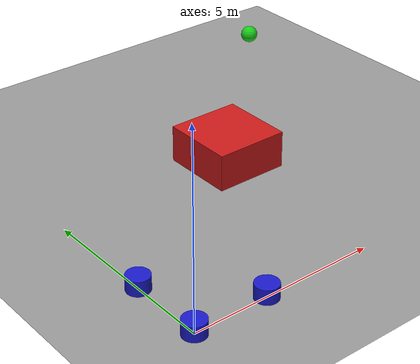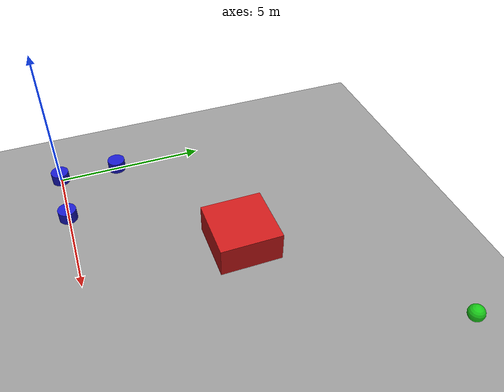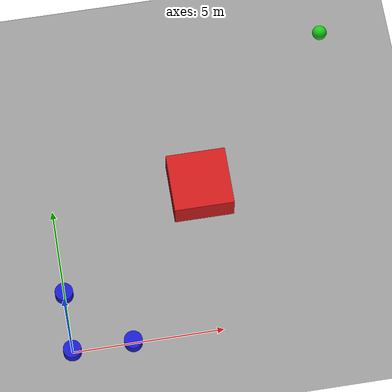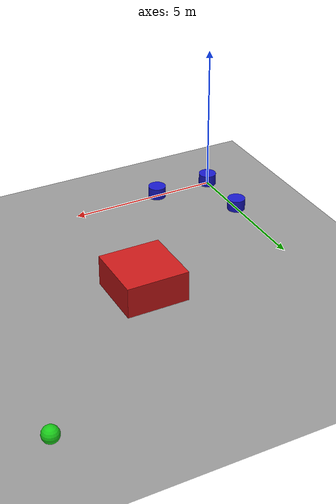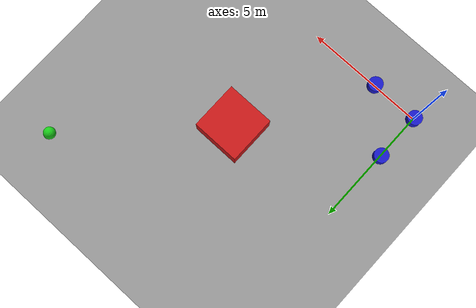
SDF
<?xml version="1.0" ?>
<sdf version="1.8">
  <world name="workspace_world">
    <physics name="1ms" type="ignored">
      <max_step_size>0.001</max_step_size>
      <real_time_factor>1.0</real_time_factor>
    </physics>

    <plugin filename="gz-sim-physics-system" name="gz::sim::systems::Physics"/>
    <plugin filename="gz-sim-user-commands-system" name="gz::sim::systems::UserCommands"/>
    <plugin filename="gz-sim-scene-broadcaster-system" name="gz::sim::systems::SceneBroadcaster"/>

    <gui fullscreen='0'>
      <plugin filename="GzScene3D" name="3D View">
        <gz-prop type="string" key="state">embedded</gz-prop>
        <property type="string" key="cameraPose">-6.0 -6.0 12.0 0.0 0.6 0.8</property>
      </plugin>

      <plugin filename="WorldControl" name="World control">
        <gz-prop type="string" key="state">embedded</gz-prop>
        <property type="bool" key="showTitleBar">false</property>
        <property type="string" key="state">floating</property>
      </plugin>

      <plugin filename="WorldStats" name="World stats">
        <gz-prop type="string" key="state">embedded</gz-prop>
        <property type="bool" key="showTitleBar">false</property>
        <property type="string" key="state">floating</property>
      </plugin>
    </gui>

    <light type="directional" name="sun">
      <cast_shadows>true</cast_shadows>
      <pose>0 0 10 0 0 0</pose>
      <diffuse>0.8 0.8 0.8 1</diffuse>
      <specular>0.2 0.2 0.2 1</specular>
      <direction>-0.5 0.1 -0.9</direction>
    </light>

    <model name="ground_plane">
      <static>true</static>
      <link name="link">
        <collision name="collision">
          <geometry><plane><normal>0 0 1</normal><size>100 100</size></plane></geometry>
        </collision>
        <visual name="visual">
          <geometry><plane><normal>0 0 1</normal><size>100 100</size></plane></geometry>
          <material>
            <ambient>0.4 0.4 0.4 1</ambient>
            <diffuse>0.6 0.6 0.6 1</diffuse>
          </material>
        </visual>
      </link>
    </model>

    <model name="test_obstacle">
      <static>true</static>
      <pose>5.0 5.0 0.5 0 0 0</pose>
      <link name="link">
        <collision name="collision">
          <geometry><box><size>2.0 2.0 1.0</size></box></geometry>
        </collision>
        <visual name="visual">
          <geometry><box><size>2.0 2.0 1.0</size></box></geometry>
          <material>
            <ambient>0.8 0.1 0.1 1</ambient>
            <diffuse>0.8 0.1 0.1 1</diffuse>
          </material>
        </visual>
      </link>
    </model>

    <model name="drone">
      <static>true</static>
      <pose>10.0 10.0 0.5 0 0 0</pose>
      <link name="link">
        <visual name="visual">
          <geometry><sphere><radius>0.25</radius></sphere></geometry>
          <material>
            <ambient>0.1 0.8 0.1 1</ambient>
            <diffuse>0.1 0.8 0.1 1</diffuse>
          </material>
        </visual>
      </link>
    </model>

    <model name="robot1">
      <static>true</static>
      <pose>0.0 0.0 0.2 0 0 0</pose>
      <link name="link">
        <visual name="visual">
          <geometry><cylinder><radius>0.3</radius><length>0.4</length></cylinder></geometry>
          <material>
            <ambient>0.1 0.1 0.8 1</ambient>
            <diffuse>0.1 0.1 0.8 1</diffuse>
          </material>
        </visual>
      </link>
    </model>

    <model name="robot2">
      <static>true</static>
      <pose>2.0 0.0 0.2 0 0 0</pose>
      <link name="link">
        <visual name="visual">
          <geometry><cylinder><radius>0.3</radius><length>0.4</length></cylinder></geometry>
          <material>
            <ambient>0.1 0.1 0.8 1</ambient>
            <diffuse>0.1 0.1 0.8 1</diffuse>
          </material>
        </visual>
      </link>
    </model>

    <model name="robot3">
      <static>true</static>
      <pose>0.0 2.0 0.2 0 0 0</pose>
      <link name="link">
        <visual name="visual">
          <geometry><cylinder><radius>0.3</radius><length>0.4</length></cylinder></geometry>
          <material>
            <ambient>0.1 0.1 0.8 1</ambient>
            <diffuse>0.1 0.1 0.8 1</diffuse>
          </material>
        </visual>
      </link>
    </model>

  </world>
</sdf>
